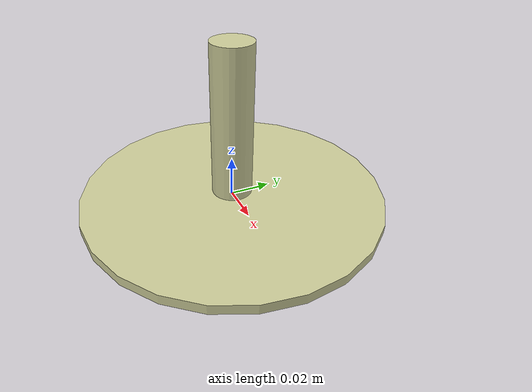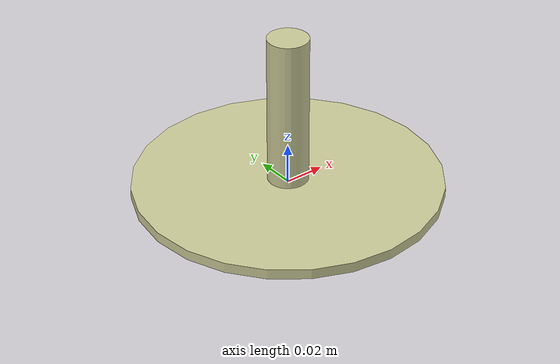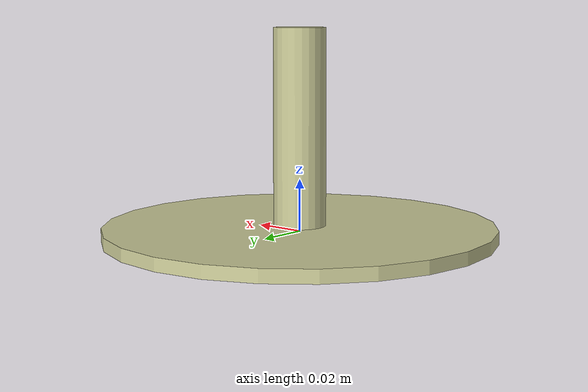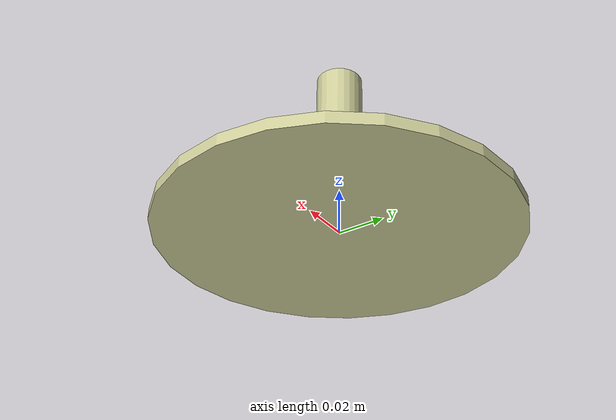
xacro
<?xml version="1.0"?>
<!-- This is the xacro file, defining the visuals and collisions of
the solid metal part that connects allegro to ur5 -->
<robot>

<link name="mount_base">
  <visual>
    <geometry>
      <cylinder length="0.005" radius="0.075"/>
    </geometry>
    <material name="yellowish">
      <color rgba=".8 .8 .6 1"/>
    </material>
  </visual>
  <collision>
    <geometry>
      <cylinder length="0.005" radius="0.075"/>
    </geometry>
  </collision>
</link>

<link name="mount_body">
  <visual>
    <geometry>
      <cylinder length="0.075" radius="0.01"/>
    </geometry>
    <material name="yellowish">
      <color rgba=".8 .8 .6 1"/>
    </material>
  </visual>
  <collision>
    <geometry>
      <cylinder length="0.075" radius="0.01"/>
    </geometry>
  </collision>
</link>

<joint name="mount_mid" type="fixed">
  <parent link="mount_base" />
  <child link = "mount_body" />
  <origin xyz="0.0 0.0 0.04" rpy="0.0 0.0 0.0" />
</joint>

</robot>
